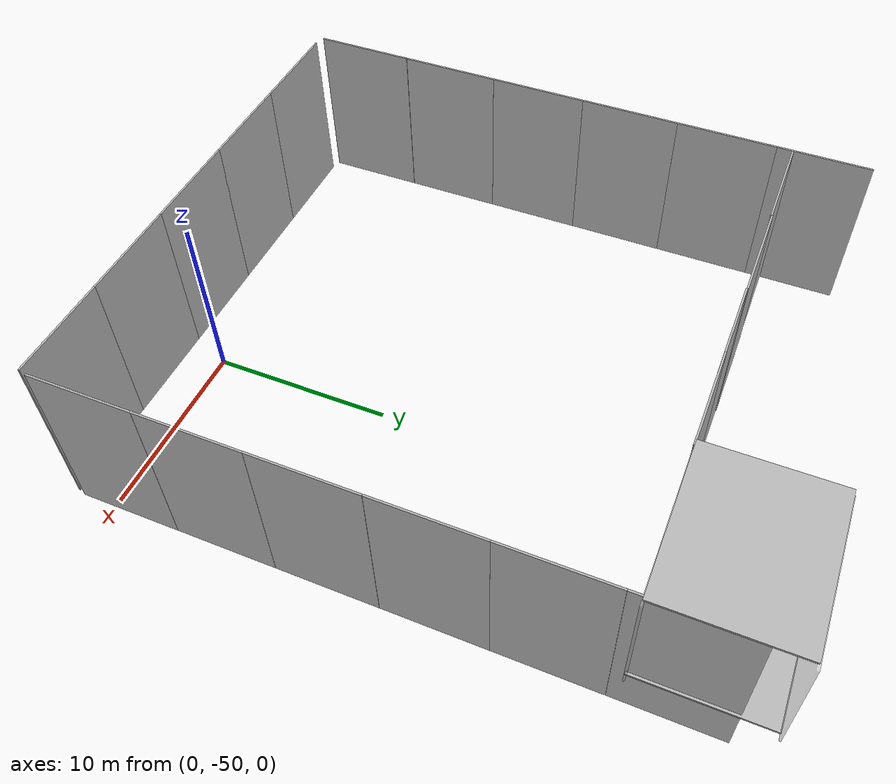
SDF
<sdf version="1.7">
 <world name="default">
  <plugin name="ros_interface_plugin" filename="librotors_gazebo_ros_interface_plugin.so"/>
  <scene>
   <grid>0</grid>
   <origin_visual>0</origin_visual>
   <ambient>0.85 0.85 0.85 1</ambient>
   <sky><clouds><speed>12</speed></clouds></sky>
   <background>0.35 0.35 0.35 1</background>
   <shadows>1</shadows>
  </scene>
  <physics name="default_physics" default="0" type="ode">
   <ode>
    <solver>
     <type>quick</type>
     <iters>1000</iters>
     <sor>1.3</sor>
     <use_dynamic_moi_rescaling>0</use_dynamic_moi_rescaling>
    </solver>
    <constraints>
     <cfm>0</cfm>
     <erp>0.2</erp>
     <contact_max_correcting_vel>100</contact_max_correcting_vel>
     <contact_surface_layer>0.001</contact_surface_layer>
    </constraints>
   </ode>
   <max_step_size>0.01</max_step_size>
   <real_time_factor>1</real_time_factor>
   <real_time_update_rate>100</real_time_update_rate>
   <gravity>0 0 -9.8</gravity>
  </physics>
  <magnetic_field>6e-06 2.3e-05 -4.2e-05</magnetic_field>
  <atmosphere type="adiabatic"/>
  <spherical_coordinates>
   <surface_model>EARTH_WGS84</surface_model>
   <latitude_deg>0</latitude_deg>
   <longitude_deg>0</longitude_deg>
   <elevation>0</elevation>
   <heading_deg>0</heading_deg>
  </spherical_coordinates>
  <light name="sun" type="directional">
   <pose>0 0 1000 0 -0 0</pose>
   <diffuse>0.8 0.8 0.8 1</diffuse>
   <specular>0.5 0.5 0.5 1</specular>
   <attenuation>
    <range>1000</range>
    <constant>0.9</constant>
    <linear>0.01</linear>
    <quadratic>0.001</quadratic>
   </attenuation>
   <direction>-0.5 0.1 -0.4</direction>
   <spot><inner_angle>0</inner_angle><outer_angle>0</outer_angle><falloff>0</falloff></spot>
  </light>
  <model name="ground_plane">
   <static>1</static>
   <link name="link">
    <collision name="collision">
     <geometry><plane><normal>0 0 1</normal><size>100 100</size></plane></geometry>
     <surface><friction><ode><mu>100</mu><mu2>50</mu2></ode></friction></surface>
    </collision>
   </link>
  </model>
  <gravity>0 0 -9.8</gravity>
  <model name="school_wall_0">
   <static>1</static>
   <link name="link">
    <pose>0 0 4.825 0 -0 0</pose>
    <collision name="collision"><geometry><box><size>5.6 0.1 9.65</size></box></geometry></collision>
    <visual name="visual">
     <geometry><box><size>5.6 0.1 9.65</size></box></geometry>
     <material>
      <script>
       <uri>model://school_wall/materials/scripts</uri>
       <uri>model://school_wall/materials/textures</uri>
       <name>vrc/school_wall</name>
      </script>
     </material>
    </visual>
   </link>
   <pose>7.42471 -52.32 0 0 -0 0</pose>
  </model>
  <model name="school_wall_0_clone_0">
   <static>1</static>
   <link name="link">
    <pose>0 0 4.825 0 -0 0</pose>
    <collision name="collision"><geometry><box><size>5.6 0.1 9.65</size></box></geometry></collision>
    <visual name="visual">
     <geometry><box><size>5.6 0.1 9.65</size></box></geometry>
     <material>
      <script>
       <uri>model://school_wall/materials/scripts</uri>
       <uri>model://school_wall/materials/textures</uri>
       <name>vrc/school_wall</name>
      </script>
     </material>
    </visual>
   </link>
   <pose>1.83524 -52.32 0 0 -0 0</pose>
  </model>
  <model name="school_wall_0_clone_1">
   <static>1</static>
   <link name="link">
    <pose>0 0 4.825 0 -0 0</pose>
    <collision name="collision"><geometry><box><size>5.6 0.1 9.65</size></box></geometry></collision>
    <visual name="visual">
     <geometry><box><size>5.6 0.1 9.65</size></box></geometry>
     <material>
      <script>
       <uri>model://school_wall/materials/scripts</uri>
       <uri>model://school_wall/materials/textures</uri>
       <name>vrc/school_wall</name>
      </script>
     </material>
    </visual>
   </link>
   <pose>-3.76322 -52.32 0 0 -0 0</pose>
  </model>
  <model name="school_wall_0_clone_2">
   <static>1</static>
   <link name="link">
    <pose>0 0 4.825 0 -0 0</pose>
    <collision name="collision"><geometry><box><size>5.6 0.1 9.65</size></box></geometry></collision>
    <visual name="visual">
     <geometry><box><size>5.6 0.1 9.65</size></box></geometry>
     <material>
      <script>
       <uri>model://school_wall/materials/scripts</uri>
       <uri>model://school_wall/materials/textures</uri>
       <name>vrc/school_wall</name>
      </script>
     </material>
    </visual>
   </link>
   <pose>-9.32615 -52.32 0 0 -0 0</pose>
  </model>
  <model name="school_wall_0_clone_3">
   <static>1</static>
   <link name="link">
    <pose>0 0 4.825 0 -0 0</pose>
    <collision name="collision"><geometry><box><size>5.6 0.1 9.65</size></box></geometry></collision>
    <visual name="visual">
     <geometry><box><size>5.6 0.1 9.65</size></box></geometry>
     <material>
      <script>
       <uri>model://school_wall/materials/scripts</uri>
       <uri>model://school_wall/materials/textures</uri>
       <name>vrc/school_wall</name>
      </script>
     </material>
    </visual>
   </link>
   <pose>-14.9 -52.32 0 0 -0 0</pose>
  </model>
  <model name="school_wall_0_clone_4">
   <static>1</static>
   <link name="link">
    <pose>0 0 4.825 0 -0 0</pose>
    <collision name="collision"><geometry><box><size>5.6 0.1 9.65</size></box></geometry></collision>
    <visual name="visual">
     <geometry><box><size>5.6 0.1 9.65</size></box></geometry>
     <material>
      <script>
       <uri>model://school_wall/materials/scripts</uri>
       <uri>model://school_wall/materials/textures</uri>
       <name>vrc/school_wall</name>
      </script>
     </material>
    </visual>
   </link>
   <pose>-15.4841 -23.3392 0 0 -0 0</pose>
  </model>
  <model name="school_wall_0_clone_5">
   <static>1</static>
   <link name="link">
    <pose>0 0 4.825 0 -0 0</pose>
    <collision name="collision"><geometry><box><size>5.6 0.1 9.65</size></box></geometry></collision>
    <visual name="visual">
     <geometry><box><size>5.6 0.1 9.65</size></box></geometry>
     <material>
      <script>
       <uri>model://school_wall/materials/scripts</uri>
       <uri>model://school_wall/materials/textures</uri>
       <name>vrc/school_wall</name>
      </script>
     </material>
    </visual>
   </link>
   <pose>-9.89751 -23.3026 0 0 -0 0</pose>
  </model>
  <model name="school_wall_0_clone_6">
   <static>1</static>
   <link name="link">
    <pose>0 0 4.825 0 -0 0</pose>
    <collision name="collision"><geometry><box><size>5.6 0.1 9.65</size></box></geometry></collision>
    <visual name="visual">
     <geometry><box><size>5.6 0.1 9.65</size></box></geometry>
     <material>
      <script>
       <uri>model://school_wall/materials/scripts</uri>
       <uri>model://school_wall/materials/textures</uri>
       <name>vrc/school_wall</name>
      </script>
     </material>
    </visual>
   </link>
   <pose>-4.27841 -23.3403 0 0 -0 0</pose>
  </model>
  <model name="school_wall_0_clone_7">
   <static>1</static>
   <link name="link">
    <pose>0 0 4.825 0 -0 0</pose>
    <collision name="collision"><geometry><box><size>5.6 0.1 9.65</size></box></geometry></collision>
    <visual name="visual">
     <geometry><box><size>5.6 0.1 9.65</size></box></geometry>
     <material>
      <script>
       <uri>model://school_wall/materials/scripts</uri>
       <uri>model://school_wall/materials/textures</uri>
       <name>vrc/school_wall</name>
      </script>
     </material>
    </visual>
   </link>
   <pose>0.033032 -23.332 0 0 -0 0</pose>
  </model>
  <model name="school_wall_0_clone_8">
   <static>1</static>
   <link name="link">
    <pose>0 0 4.825 0 -0 0</pose>
    <collision name="collision"><geometry><box><size>5.6 0.1 9.65</size></box></geometry></collision>
    <visual name="visual">
     <geometry><box><size>5.6 0.1 9.65</size></box></geometry>
     <material>
      <script>
       <uri>model://school_wall/materials/scripts</uri>
       <uri>model://school_wall/materials/textures</uri>
       <name>vrc/school_wall</name>
      </script>
     </material>
    </visual>
   </link>
   <pose>-18.32 -49.3158 -0 0 -0 1.57</pose>
  </model>
  <model name="school_wall_0_clone_8_clone">
   <static>1</static>
   <link name="link">
    <pose>0 0 4.825 0 -0 0</pose>
    <collision name="collision"><geometry><box><size>5.6 0.1 9.65</size></box></geometry></collision>
    <visual name="visual">
     <geometry><box><size>5.6 0.1 9.65</size></box></geometry>
     <material>
      <script>
       <uri>model://school_wall/materials/scripts</uri>
       <uri>model://school_wall/materials/textures</uri>
       <name>vrc/school_wall</name>
      </script>
     </material>
    </visual>
   </link>
   <pose>-18.32 -43.6985 -0 0 -0 1.57</pose>
  </model>
  <model name="school_wall_0_clone_8_clone_0">
   <static>1</static>
   <link name="link">
    <pose>0 0 4.825 0 -0 0</pose>
    <collision name="collision"><geometry><box><size>5.6 0.1 9.65</size></box></geometry></collision>
    <visual name="visual">
     <geometry><box><size>5.6 0.1 9.65</size></box></geometry>
     <material>
      <script>
       <uri>model://school_wall/materials/scripts</uri>
       <uri>model://school_wall/materials/textures</uri>
       <name>vrc/school_wall</name>
      </script>
     </material>
    </visual>
   </link>
   <pose>-18.32 -38.1825 -0 0 -0 1.57</pose>
  </model>
  <model name="school_wall_0_clone_8_clone_1">
   <static>1</static>
   <link name="link">
    <pose>0 0 4.825 0 -0 0</pose>
    <collision name="collision"><geometry><box><size>5.6 0.1 9.65</size></box></geometry></collision>
    <visual name="visual">
     <geometry><box><size>5.6 0.1 9.65</size></box></geometry>
     <material>
      <script>
       <uri>model://school_wall/materials/scripts</uri>
       <uri>model://school_wall/materials/textures</uri>
       <name>vrc/school_wall</name>
      </script>
     </material>
    </visual>
   </link>
   <pose>-18.32 -32.6072 -0 0 -0 1.57</pose>
  </model>
  <model name="school_wall_0_clone_8_clone_2">
   <static>1</static>
   <link name="link">
    <pose>0 0 4.825 0 -0 0</pose>
    <collision name="collision"><geometry><box><size>5.6 0.1 9.65</size></box></geometry></collision>
    <visual name="visual">
     <geometry><box><size>5.6 0.1 9.65</size></box></geometry>
     <material>
      <script>
       <uri>model://school_wall/materials/scripts</uri>
       <uri>model://school_wall/materials/textures</uri>
       <name>vrc/school_wall</name>
      </script>
     </material>
    </visual>
   </link>
   <pose>-18.32 -27.0132 -0 0 -0 1.57</pose>
  </model>
  <model name="school_wall_0_clone_8_clone_3">
   <static>1</static>
   <link name="link">
    <pose>0 0 4.825 0 -0 0</pose>
    <collision name="collision"><geometry><box><size>5.6 0.1 9.65</size></box></geometry></collision>
    <visual name="visual">
     <geometry><box><size>5.6 0.1 9.65</size></box></geometry>
     <material>
      <script>
       <uri>model://school_wall/materials/scripts</uri>
       <uri>model://school_wall/materials/textures</uri>
       <name>vrc/school_wall</name>
      </script>
     </material>
    </visual>
   </link>
   <pose>-18.32 -21.8362 -0 0 -0 1.57</pose>
  </model>
  <model name="school_wall_0_clone_8_clone_4">
   <static>1</static>
   <link name="link">
    <pose>0 0 4.825 0 -0 0</pose>
    <collision name="collision"><geometry><box><size>5.6 0.1 9.65</size></box></geometry></collision>
    <visual name="visual">
     <geometry><box><size>5.6 0.1 9.65</size></box></geometry>
     <material>
      <script>
       <uri>model://school_wall/materials/scripts</uri>
       <uri>model://school_wall/materials/textures</uri>
       <name>vrc/school_wall</name>
      </script>
     </material>
    </visual>
   </link>
   <pose>10.32 -49.1079 -0 0 -0 1.57</pose>
  </model>
  <model name="school_wall_0_clone_8_clone_5">
   <static>1</static>
   <link name="link">
    <pose>0 0 4.825 0 -0 0</pose>
    <collision name="collision"><geometry><box><size>5.6 0.1 9.65</size></box></geometry></collision>
    <visual name="visual">
     <geometry><box><size>5.6 0.1 9.65</size></box></geometry>
     <material>
      <script>
       <uri>model://school_wall/materials/scripts</uri>
       <uri>model://school_wall/materials/textures</uri>
       <name>vrc/school_wall</name>
      </script>
     </material>
    </visual>
   </link>
   <pose>10.32 -43.5491 -0 0 -0 1.57</pose>
  </model>
  <model name="school_wall_0_clone_8_clone_6">
   <static>1</static>
   <link name="link">
    <pose>0 0 4.825 0 -0 0</pose>
    <collision name="collision"><geometry><box><size>5.6 0.1 9.65</size></box></geometry></collision>
    <visual name="visual">
     <geometry><box><size>5.6 0.1 9.65</size></box></geometry>
     <material>
      <script>
       <uri>model://school_wall/materials/scripts</uri>
       <uri>model://school_wall/materials/textures</uri>
       <name>vrc/school_wall</name>
      </script>
     </material>
    </visual>
   </link>
   <pose>10.32 -37.9646 -0 0 -0 1.57</pose>
  </model>
  <model name="school_wall_0_clone_8_clone_7">
   <static>1</static>
   <link name="link">
    <pose>0 0 4.825 0 -0 0</pose>
    <collision name="collision"><geometry><box><size>5.6 0.1 9.65</size></box></geometry></collision>
    <visual name="visual">
     <geometry><box><size>5.6 0.1 9.65</size></box></geometry>
     <material>
      <script>
       <uri>model://school_wall/materials/scripts</uri>
       <uri>model://school_wall/materials/textures</uri>
       <name>vrc/school_wall</name>
      </script>
     </material>
    </visual>
   </link>
   <pose>10.32 -32.3554 -0 0 -0 1.57</pose>
  </model>
  <model name="school_wall_0_clone_8_clone_8">
   <static>1</static>
   <link name="link">
    <pose>0 0 4.825 0 -0 0</pose>
    <collision name="collision"><geometry><box><size>5.6 0.1 9.65</size></box></geometry></collision>
    <visual name="visual">
     <geometry><box><size>5.6 0.1 9.65</size></box></geometry>
     <material>
      <script>
       <uri>model://school_wall/materials/scripts</uri>
       <uri>model://school_wall/materials/textures</uri>
       <name>vrc/school_wall</name>
      </script>
     </material>
    </visual>
   </link>
   <pose>10.32 -26.7812 -0 0 -0 1.57</pose>
  </model>
  <model name="school_wall_0_clone_8_clone_9">
   <static>1</static>
   <link name="link">
    <pose>0 0 4.825 0 -0 0</pose>
    <collision name="collision"><geometry><box><size>5.6 0.1 9.65</size></box></geometry></collision>
    <visual name="visual">
     <geometry><box><size>5.6 0.1 9.65</size></box></geometry>
     <material>
      <script>
       <uri>model://school_wall/materials/scripts</uri>
       <uri>model://school_wall/materials/textures</uri>
       <name>vrc/school_wall</name>
      </script>
     </material>
    </visual>
   </link>
   <pose>10.32 -21.1651 -0 0 -0 1.57</pose>
  </model>
  <model name="school_wall_0_clone_8_clone_10">
   <static>1</static>
   <link name="link">
    <pose>0 0 4.825 0 -0 0</pose>
    <collision name="collision"><geometry><box><size>5.6 0.1 9.65</size></box></geometry></collision>
    <visual name="visual">
     <geometry><box><size>5.6 0.1 9.65</size></box></geometry>
     <material>
      <script>
       <uri>model://school_wall/materials/scripts</uri>
       <uri>model://school_wall/materials/textures</uri>
       <name>vrc/school_wall</name>
      </script>
     </material>
    </visual>
   </link>
   <pose>2.89 -20.5335 -0 0 -0 1.57</pose>
  </model>
  <model name="apriltag1">
   <link name="link">
    <pose>0 0 0.115 0 1.57 0</pose>
    <inertial>
     <mass>0.39</mass>
     <inertia><ixx>0.00058</ixx><ixy>0</ixy><ixz>0</ixz><iyy>0.00058</iyy><iyz>0</iyz><izz>0.00019</izz></inertia>
    </inertial>
    <collision name="collision"><geometry><box><size>0.496 0.496 0.01</size></box></geometry></collision>
    <visual name="visual">
     <geometry><box><size>0.496 0.496 0.01</size></box></geometry>
     <material>
      <script>
       <uri>model://apriltag/materials/scripts</uri>
       <uri>model://apriltag/materials/textures</uri>
       <name>apriltag/Diffuse1</name>
      </script>
     </material>
    </visual>
   </link>
   <static>1</static>
   <pose>2.13692 -23.38 1.58753 0 -0 1.57</pose>
  </model>
  <model name="school_glass">
   <static>1</static>
   <link name="link">
    <pose>0 0 4.825 0 -0 0</pose>
    <collision name="collision"><geometry><box><size>8 0.1 6.65</size></box></geometry></collision>
    <visual name="visual">
     <geometry><box><size>8 0.1 6.65</size></box></geometry>
     <material>
      <script>
       <uri>model://school_glass/materials/scripts</uri>
       <uri>model://school_glass/materials/textures</uri>
       <name>vrc/school_glass</name>
      </script>
     </material>
    </visual>
   </link>
   <pose>6.81134 -23.3046 1.5 0 -0 0</pose>
  </model>
  <model name="school_wall2">
   <static>1</static>
   <link name="link">
    <pose>0 0 4.825 0 -0 0</pose>
    <collision name="collision"><geometry><box><size>8 0.1 6.65</size></box></geometry></collision>
    <visual name="visual">
     <geometry><box><size>8 0.1 6.65</size></box></geometry>
     <material>
      <script>
       <uri>model://school_wall2/materials/scripts</uri>
       <uri>model://school_wall2/materials/textures</uri>
       <name>vrc/school_wall2</name>
      </script>
     </material>
    </visual>
   </link>
   <pose>6.5 -15.2 3 1.57 -0 0</pose>
  </model>
  <model name="school_wall2_clone">
   <static>1</static>
   <link name="link">
    <pose>0 0 4.825 0 -0 0</pose>
    <collision name="collision"><geometry><box><size>8 0.1 6.65</size></box></geometry></collision>
    <visual name="visual">
     <geometry><box><size>8 0.1 6.65</size></box></geometry>
     <material>
      <script>
       <uri>model://school_wall2/materials/scripts</uri>
       <uri>model://school_wall2/materials/textures</uri>
       <name>vrc/school_wall2</name>
      </script>
     </material>
    </visual>
   </link>
   <pose>6.49733 -15.1753 9.6 1.57 -0 0</pose>
  </model>
  <model name="school_glass_clone">
   <static>1</static>
   <link name="link">
    <pose>0 0 4.825 0 -0 0</pose>
    <collision name="collision"><geometry><box><size>8 0.1 6.65</size></box></geometry></collision>
    <visual name="visual">
     <geometry><box><size>8 0.1 6.65</size></box></geometry>
     <material>
      <script>
       <uri>model://school_glass/materials/scripts</uri>
       <uri>model://school_glass/materials/textures</uri>
       <name>vrc/school_glass</name>
      </script>
     </material>
    </visual>
   </link>
   <pose>6.82752 -16.6943 1.5 0 -0 0</pose>
  </model>
 </world>
</sdf>
